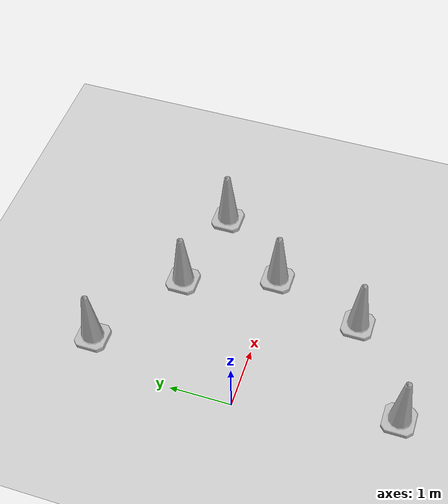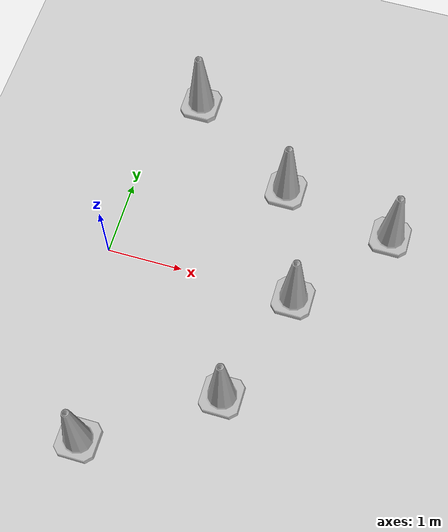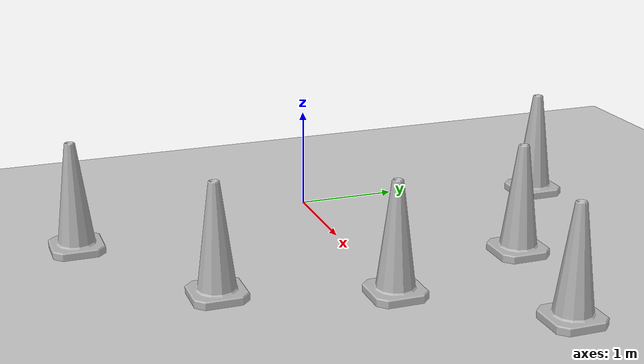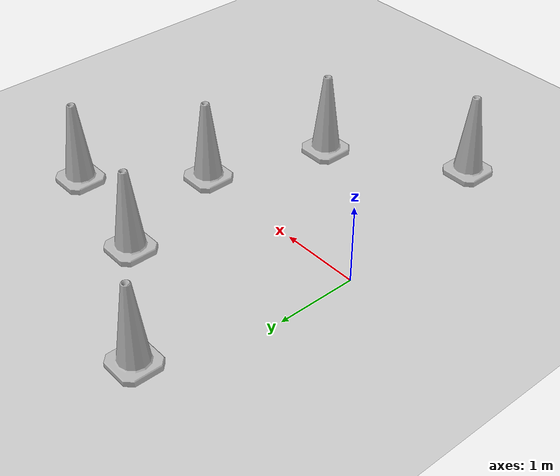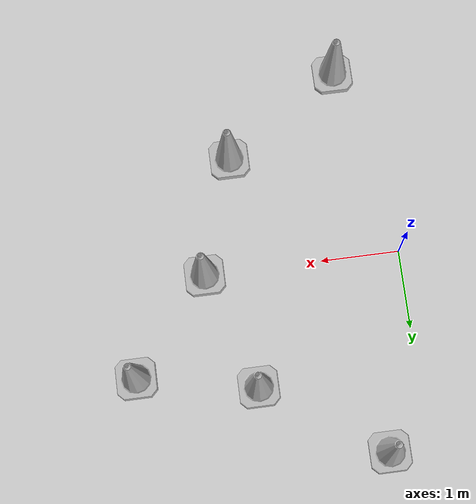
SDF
<?xml version="1.0" ?>
<sdf version="1.6">
  <world name="default">

    <!-- Source de lumière globale -->
    <include>
      <uri>model://sun</uri>
    </include>

    <!-- Le sol de la simulation -->
    <include>
      <uri>model://ground_plane</uri>
    </include>

    <!-- 6 CÔNES BIEN ESPACÉS              -->

    <!-- 1. Devant, au centre -->
    <include>
      <name>cone_1</name>
      <uri>model://construction_cone</uri>
      <pose>2.5 0.0 0 0 0 0</pose>
    </include>

    <!-- 2. Devant à gauche -->
    <include>
      <name>cone_2</name>
      <uri>model://construction_cone</uri>
      <pose>2.0 1.5 0 0 0 0</pose>
    </include>

    <!-- 3. Devant à droite -->
    <include>
      <name>cone_3</name>
      <uri>model://construction_cone</uri>
      <pose>2.0 -1.5 0 0 0 0</pose>
    </include>

    <!-- 4. Sur le côté gauche -->
    <include>
      <name>cone_4</name>
      <uri>model://construction_cone</uri>
      <pose>0.5 2.5 0 0 0 0</pose>
    </include>

    <!-- 5. Sur le côté droit -->
    <include>
      <name>cone_5</name>
      <uri>model://construction_cone</uri>
      <pose>0.5 -2.5 0 0 0 0</pose>
    </include>

    <!-- 6. Plus loin devant en diagonale -->
    <include>
      <name>cone_6</name>
      <uri>model://construction_cone</uri>
      <pose>3.5 1.2 0 0 0 0</pose>
    </include>

  </world>
</sdf>

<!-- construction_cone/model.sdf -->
<sdf version="1.5">
  <model name="Construction Cone">
    <link name="link">
      <collision name="collision">
        <geometry>
          <mesh>
            <scale>10 10 10</scale>
            <uri>file://isr-testbed/construction_cone/meshes/construction_cone.dae</uri>
          </mesh>
        </geometry>
      </collision>
      <visual name="visual">
        <geometry>
          <mesh>
            <scale>10 10 10</scale>
            <uri>file://isr-testbed/construction_cone/meshes/construction_cone.dae</uri>
          </mesh>
        </geometry>
      </visual>
    </link>
  </model>
</sdf>
